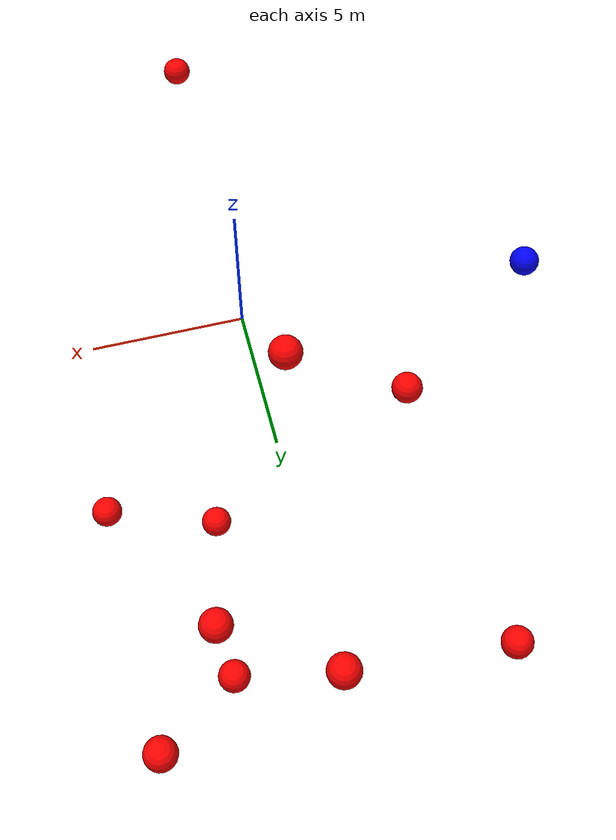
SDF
<?xml version="1.0" ?>
<sdf version="1.8">
    <world name="3d_world">
        <physics name="1ms" type="ode">
            <max_step_size>0.001</max_step_size>
            <real_time_factor>1.0</real_time_factor>
            <real_time_update_rate>1000.0</real_time_update_rate>
        </physics>
        <gravity>0 0 0</gravity>

        <plugin
            filename="gz-sim-physics-system"
            name="gz::sim::v8::systems::Physics">
        </plugin>
        <plugin
            filename="libignition-gazebo-user-commands-system.so"
            name="ignition::gazebo::systems::UserCommands">
        </plugin>
        <plugin
            filename="gz-sim-scene-broadcaster-system"
            name="gz::sim::systems::SceneBroadcaster">
        </plugin>
        <plugin
            filename="gz-sim-sensors-system"
            name="gz::sim::systems::Sensors">
            <render_engine>ogre2</render_engine>
        </plugin>

        <light type="directional" name="sun">
            <cast_shadows>true</cast_shadows>
            <pose>0 0 10 0 0 0</pose>
            <diffuse>0.8 0.8 0.8 1</diffuse>
            <specular>0.2 0.2 0.2 1</specular>
            <attenuation>
                <range>1000</range>
                <constant>0.9</constant>
                <linear>0.01</linear>
                <quadratic>0.001</quadratic>
            </attenuation>
            <direction>-0.5 0.1 -0.9</direction>
        </light>

        <!-- AGENTE -->
        <model name='agente' canonical_link='chassis'>
            <pose relative_to='world'>-10.0 0 0.0 0 0 0</pose>
            <link name='chassis'>
                <pose relative_to='__model__'>0.0 0 0.0 0 0 0</pose>
                <inertial>
                    <mass>1.14395</mass>
                    <inertia>
                        <ixx>0.095329</ixx>
                        <ixy>0</ixy>
                        <ixz>0</ixz>
                        <iyy>0.381317</iyy>
                        <iyz>0</iyz>
                        <izz>0.476646</izz>
                    </inertia>
                </inertial>
                <visual name='visual'>
                    <geometry>
                        <sphere>
                            <radius>0.5</radius>
                        </sphere>
                    </geometry>
                    <material>
                        <ambient>0.0 0.0 1.0 1</ambient>
                        <diffuse>0.0 0.0 1.0 1</diffuse>
                        <specular>0.0 0.0 1.0 1</specular>
                    </material>
                </visual>
                <collision name='collision'>
                    <geometry>
                        <sphere>
                            <radius>0.5</radius>
                        </sphere>
                    </geometry>
                </collision>
                <enable_gravity>false</enable_gravity>
            </link>

            <link name='lidar_link'>
                <pose relative_to='chassis'>0.0 0 0.1 0 0 0</pose>
                <inertial>
                    <mass>0.1</mass>
                    <inertia>
                        <ixx>0.000166667</ixx>
                        <iyy>0.000166667</iyy>
                        <izz>0.000166667</izz>
                    </inertia>
                </inertial>
                <collision name='collision'>
                    <geometry>
                        <cylinder>
                            <radius>0.05</radius>
                            <length>0.1</length>
                        </cylinder>
                    </geometry>
                </collision>
                <visual name='visual'>
                    <geometry>
                        <cylinder>
                            <radius>0.05</radius>
                            <length>0.1</length>
                        </cylinder>
                    </geometry>
                    <material>
                        <ambient>0.0 1.0 0.0 1</ambient>
                        <diffuse>0.0 1.0 0.0 1</diffuse>
                        <specular>0.0 1.0 0.0 1</specular>
                    </material>
                </visual>
                <sensor name="lidar" type="gpu_lidar">
                    <topic>scan</topic>
                    <update_rate>10</update_rate>
                    <lidar>
                        <scan>
                            <horizontal>
                                <samples>5000</samples>
                                <resolution>1</resolution>
                                <min_angle>-3.14159</min_angle>
                                <max_angle>3.14159</max_angle>
                            </horizontal>
                        </scan>
                        <range>
                            <min>0.1</min>
                            <max>10.0</max>
                            <resolution>0.01</resolution>
                        </range>
                    </lidar>
                    <visualize>true</visualize>
                    <always_on>true</always_on>
                    <update_rate>10</update_rate>
                    <pose_frame>lidar</pose_frame>
                </sensor>
                <enable_gravity>false</enable_gravity>
            </link>

            <joint name="lidar_joint" type="fixed">
                <parent>chassis</parent>
                <child>lidar_link</child>
            </joint>

            <plugin
                filename="ignition-gazebo-joint-state-publisher-system"
                name="ignition::gazebo::systems::JointStatePublisher">
            </plugin>
            <plugin
                filename="ignition-gazebo-odometry-publisher-system"
                name="ignition::gazebo::systems::OdometryPublisher">
                <dimensions>3</dimensions>
            </plugin>
            <plugin
                filename="ignition-gazebo-velocity-control-system"
                name="ignition::gazebo::systems::VelocityControl">
                <initial_linear>0.0 0 0</initial_linear>
                <initial_angular>0 0 0.0</initial_angular>
            </plugin>
            <plugin
                filename="libignition-gazebo-pose-publisher-system.so"
                name="ignition::gazebo::systems::PosePublisher">
                <topic>/agente/pose</topic>
                <frame_id>agente</frame_id>
                <update_rate>30</update_rate>
            </plugin>
        </model>

        <!-- OBSTACLE 1 -->
        <model name='obstacle_1' canonical_link='obstacle'>
            <static>false</static>
            <pose relative_to='world'>-5.55 12.32 -1.99 0 0 0</pose>
            <link name='obstacle'>
                <pose relative_to='__model__'>0.0 0 0.0 0 0 0</pose>
                <visual name='visual'>
                    <geometry>
                        <sphere>
                            <radius>0.50</radius>
                        </sphere>
                    </geometry>
                    <material>
                        <ambient>1.0 0.0 0.0 1</ambient>
                        <diffuse>1.0 0.0 0.0 1</diffuse>
                        <specular>1.0 0.0 0.0 1</specular>
                    </material>
                </visual>
                <collision name='collision'>
                    <geometry>
                        <sphere>
                            <radius>0.50</radius>
                        </sphere>
                    </geometry>
                </collision>
                <enable_gravity>false</enable_gravity>
            </link>

            <plugin
                filename="ignition-gazebo-velocity-control-system"
                name="ignition::gazebo::systems::VelocityControl">
                <initial_linear>1.23 -1.56 0.25</initial_linear>
                <initial_angular>0 0 0</initial_angular>
            </plugin>

            <plugin
                filename="ignition-gazebo-odometry-publisher-system"
                name="ignition::gazebo::systems::OdometryPublisher">
                <dimensions>3</dimensions>
            </plugin>
        </model>

        <!-- OBSTACLE 2 -->
        <model name='obstacle_2' canonical_link='obstacle'>
            <static>false</static>
            <pose relative_to='world'>2.15 4.60 -4.96 0 0 0</pose>
            <link name='obstacle'>
                <pose relative_to='__model__'>0.0 0 0.0 0 0 0</pose>
                <visual name='visual'>
                    <geometry>
                        <sphere>
                            <radius>0.50</radius>
                        </sphere>
                    </geometry>
                    <material>
                        <ambient>1.0 0.0 0.0 1</ambient>
                        <diffuse>1.0 0.0 0.0 1</diffuse>
                        <specular>1.0 0.0 0.0 1</specular>
                    </material>
                </visual>
                <collision name='collision'>
                    <geometry>
                        <sphere>
                            <radius>0.50</radius>
                        </sphere>
                    </geometry>
                </collision>
                <enable_gravity>false</enable_gravity>
            </link>

            <plugin
                filename="ignition-gazebo-velocity-control-system"
                name="ignition::gazebo::systems::VelocityControl">
                <initial_linear>0.31 -0.83 0.89</initial_linear>
                <initial_angular>0 0 0</initial_angular>
            </plugin>

            <plugin
                filename="ignition-gazebo-odometry-publisher-system"
                name="ignition::gazebo::systems::OdometryPublisher">
                <dimensions>3</dimensions>
            </plugin>
        </model>

        <!-- OBSTACLE 3 -->
        <model name='obstacle_3' canonical_link='obstacle'>
            <static>false</static>
            <pose relative_to='world'>0.09 13.09 1.36 0 0 0</pose>
            <link name='obstacle'>
                <pose relative_to='__model__'>0.0 0 0.0 0 0 0</pose>
                <visual name='visual'>
                    <geometry>
                        <sphere>
                            <radius>0.50</radius>
                        </sphere>
                    </geometry>
                    <material>
                        <ambient>1.0 0.0 0.0 1</ambient>
                        <diffuse>1.0 0.0 0.0 1</diffuse>
                        <specular>1.0 0.0 0.0 1</specular>
                    </material>
                </visual>
                <collision name='collision'>
                    <geometry>
                        <sphere>
                            <radius>0.50</radius>
                        </sphere>
                    </geometry>
                </collision>
                <enable_gravity>false</enable_gravity>
            </link>

            <plugin
                filename="ignition-gazebo-velocity-control-system"
                name="ignition::gazebo::systems::VelocityControl">
                <initial_linear>0.62 -1.89 -0.20</initial_linear>
                <initial_angular>0 0 0</initial_angular>
            </plugin>

            <plugin
                filename="ignition-gazebo-odometry-publisher-system"
                name="ignition::gazebo::systems::OdometryPublisher">
                <dimensions>3</dimensions>
            </plugin>
        </model>

        <!-- OBSTACLE 4 -->
        <model name='obstacle_4' canonical_link='obstacle'>
            <static>false</static>
            <pose relative_to='world'>-0.20 -12.53 -0.10 0 0 0</pose>
            <link name='obstacle'>
                <pose relative_to='__model__'>0.0 0 0.0 0 0 0</pose>
                <visual name='visual'>
                    <geometry>
                        <sphere>
                            <radius>0.50</radius>
                        </sphere>
                    </geometry>
                    <material>
                        <ambient>1.0 0.0 0.0 1</ambient>
                        <diffuse>1.0 0.0 0.0 1</diffuse>
                        <specular>1.0 0.0 0.0 1</specular>
                    </material>
                </visual>
                <collision name='collision'>
                    <geometry>
                        <sphere>
                            <radius>0.50</radius>
                        </sphere>
                    </geometry>
                </collision>
                <enable_gravity>false</enable_gravity>
            </link>

            <plugin
                filename="ignition-gazebo-velocity-control-system"
                name="ignition::gazebo::systems::VelocityControl">
                <initial_linear>-0.47 1.94 0.01</initial_linear>
                <initial_angular>0 0 0</initial_angular>
            </plugin>

            <plugin
                filename="ignition-gazebo-odometry-publisher-system"
                name="ignition::gazebo::systems::OdometryPublisher">
                <dimensions>3</dimensions>
            </plugin>
        </model>

        <!-- OBSTACLE 5 -->
        <model name='obstacle_5' canonical_link='obstacle'>
            <static>false</static>
            <pose relative_to='world'>-4.44 4.24 0.35 0 0 0</pose>
            <link name='obstacle'>
                <pose relative_to='__model__'>0.0 0 0.0 0 0 0</pose>
                <visual name='visual'>
                    <geometry>
                        <sphere>
                            <radius>0.50</radius>
                        </sphere>
                    </geometry>
                    <material>
                        <ambient>1.0 0.0 0.0 1</ambient>
                        <diffuse>1.0 0.0 0.0 1</diffuse>
                        <specular>1.0 0.0 0.0 1</specular>
                    </material>
                </visual>
                <collision name='collision'>
                    <geometry>
                        <sphere>
                            <radius>0.50</radius>
                        </sphere>
                    </geometry>
                </collision>
                <enable_gravity>false</enable_gravity>
            </link>

            <plugin
                filename="ignition-gazebo-velocity-control-system"
                name="ignition::gazebo::systems::VelocityControl">
                <initial_linear>1.16 -1.02 -0.08</initial_linear>
                <initial_angular>0 0 0</initial_angular>
            </plugin>

            <plugin
                filename="ignition-gazebo-odometry-publisher-system"
                name="ignition::gazebo::systems::OdometryPublisher">
                <dimensions>3</dimensions>
            </plugin>
        </model>

        <!-- OBSTACLE 6 -->
        <model name='obstacle_6' canonical_link='obstacle'>
            <static>false</static>
            <pose relative_to='world'>2.80 10.77 -3.22 0 0 0</pose>
            <link name='obstacle'>
                <pose relative_to='__model__'>0.0 0 0.0 0 0 0</pose>
                <visual name='visual'>
                    <geometry>
                        <sphere>
                            <radius>0.50</radius>
                        </sphere>
                    </geometry>
                    <material>
                        <ambient>1.0 0.0 0.0 1</ambient>
                        <diffuse>1.0 0.0 0.0 1</diffuse>
                        <specular>1.0 0.0 0.0 1</specular>
                    </material>
                </visual>
                <collision name='collision'>
                    <geometry>
                        <sphere>
                            <radius>0.50</radius>
                        </sphere>
                    </geometry>
                </collision>
                <enable_gravity>false</enable_gravity>
            </link>

            <plugin
                filename="ignition-gazebo-velocity-control-system"
                name="ignition::gazebo::systems::VelocityControl">
                <initial_linear>-0.91 -1.70 0.51</initial_linear>
                <initial_angular>0 0 0</initial_angular>
            </plugin>

            <plugin
                filename="ignition-gazebo-odometry-publisher-system"
                name="ignition::gazebo::systems::OdometryPublisher">
                <dimensions>3</dimensions>
            </plugin>
        </model>

        <!-- OBSTACLE 7 -->
        <model name='obstacle_7' canonical_link='obstacle'>
            <static>false</static>
            <pose relative_to='world'>5.69 3.75 -4.13 0 0 0</pose>
            <link name='obstacle'>
                <pose relative_to='__model__'>0.0 0 0.0 0 0 0</pose>
                <visual name='visual'>
                    <geometry>
                        <sphere>
                            <radius>0.50</radius>
                        </sphere>
                    </geometry>
                    <material>
                        <ambient>1.0 0.0 0.0 1</ambient>
                        <diffuse>1.0 0.0 0.0 1</diffuse>
                        <specular>1.0 0.0 0.0 1</specular>
                    </material>
                </visual>
                <collision name='collision'>
                    <geometry>
                        <sphere>
                            <radius>0.50</radius>
                        </sphere>
                    </geometry>
                </collision>
                <enable_gravity>false</enable_gravity>
            </link>

            <plugin
                filename="ignition-gazebo-velocity-control-system"
                name="ignition::gazebo::systems::VelocityControl">
                <initial_linear>-1.13 -0.87 0.96</initial_linear>
                <initial_angular>0 0 0</initial_angular>
            </plugin>

            <plugin
                filename="ignition-gazebo-odometry-publisher-system"
                name="ignition::gazebo::systems::OdometryPublisher">
                <dimensions>3</dimensions>
            </plugin>
        </model>

        <!-- OBSTACLE 8 -->
        <model name='obstacle_8' canonical_link='obstacle'>
            <static>false</static>
            <pose relative_to='world'>-0.36 4.95 4.71 0 0 0</pose>
            <link name='obstacle'>
                <pose relative_to='__model__'>0.0 0 0.0 0 0 0</pose>
                <visual name='visual'>
                    <geometry>
                        <sphere>
                            <radius>0.50</radius>
                        </sphere>
                    </geometry>
                    <material>
                        <ambient>1.0 0.0 0.0 1</ambient>
                        <diffuse>1.0 0.0 0.0 1</diffuse>
                        <specular>1.0 0.0 0.0 1</specular>
                    </material>
                </visual>
                <collision name='collision'>
                    <geometry>
                        <sphere>
                            <radius>0.50</radius>
                        </sphere>
                    </geometry>
                </collision>
                <enable_gravity>false</enable_gravity>
            </link>

            <plugin
                filename="ignition-gazebo-velocity-control-system"
                name="ignition::gazebo::systems::VelocityControl">
                <initial_linear>0.00 -1.28 -1.22</initial_linear>
                <initial_angular>0 0 0</initial_angular>
            </plugin>

            <plugin
                filename="ignition-gazebo-odometry-publisher-system"
                name="ignition::gazebo::systems::OdometryPublisher">
                <dimensions>3</dimensions>
            </plugin>
        </model>

        <!-- OBSTACLE 9 -->
        <model name='obstacle_9' canonical_link='obstacle'>
            <static>false</static>
            <pose relative_to='world'>5.30 13.35 -0.73 0 0 0</pose>
            <link name='obstacle'>
                <pose relative_to='__model__'>0.0 0 0.0 0 0 0</pose>
                <visual name='visual'>
                    <geometry>
                        <sphere>
                            <radius>0.50</radius>
                        </sphere>
                    </geometry>
                    <material>
                        <ambient>1.0 0.0 0.0 1</ambient>
                        <diffuse>1.0 0.0 0.0 1</diffuse>
                        <specular>1.0 0.0 0.0 1</specular>
                    </material>
                </visual>
                <collision name='collision'>
                    <geometry>
                        <sphere>
                            <radius>0.50</radius>
                        </sphere>
                    </geometry>
                </collision>
                <enable_gravity>false</enable_gravity>
            </link>

            <plugin
                filename="ignition-gazebo-velocity-control-system"
                name="ignition::gazebo::systems::VelocityControl">
                <initial_linear>-0.51 -1.93 0.11</initial_linear>
                <initial_angular>0 0 0</initial_angular>
            </plugin>

            <plugin
                filename="ignition-gazebo-odometry-publisher-system"
                name="ignition::gazebo::systems::OdometryPublisher">
                <dimensions>3</dimensions>
            </plugin>
        </model>

        <!-- OBSTACLE 10 -->
        <model name='obstacle_10' canonical_link='obstacle'>
            <static>false</static>
            <pose relative_to='world'>3.11 10.69 0.67 0 0 0</pose>
            <link name='obstacle'>
                <pose relative_to='__model__'>0.0 0 0.0 0 0 0</pose>
                <visual name='visual'>
                    <geometry>
                        <sphere>
                            <radius>0.50</radius>
                        </sphere>
                    </geometry>
                    <material>
                        <ambient>1.0 0.0 0.0 1</ambient>
                        <diffuse>1.0 0.0 0.0 1</diffuse>
                        <specular>1.0 0.0 0.0 1</specular>
                    </material>
                </visual>
                <collision name='collision'>
                    <geometry>
                        <sphere>
                            <radius>0.50</radius>
                        </sphere>
                    </geometry>
                </collision>
                <enable_gravity>false</enable_gravity>
            </link>

            <plugin
                filename="ignition-gazebo-velocity-control-system"
                name="ignition::gazebo::systems::VelocityControl">
                <initial_linear>-0.87 -1.80 -0.11</initial_linear>
                <initial_angular>0 0 0</initial_angular>
            </plugin>

            <plugin
                filename="ignition-gazebo-odometry-publisher-system"
                name="ignition::gazebo::systems::OdometryPublisher">
                <dimensions>3</dimensions>
            </plugin>
        </model>

    </world>
</sdf>
